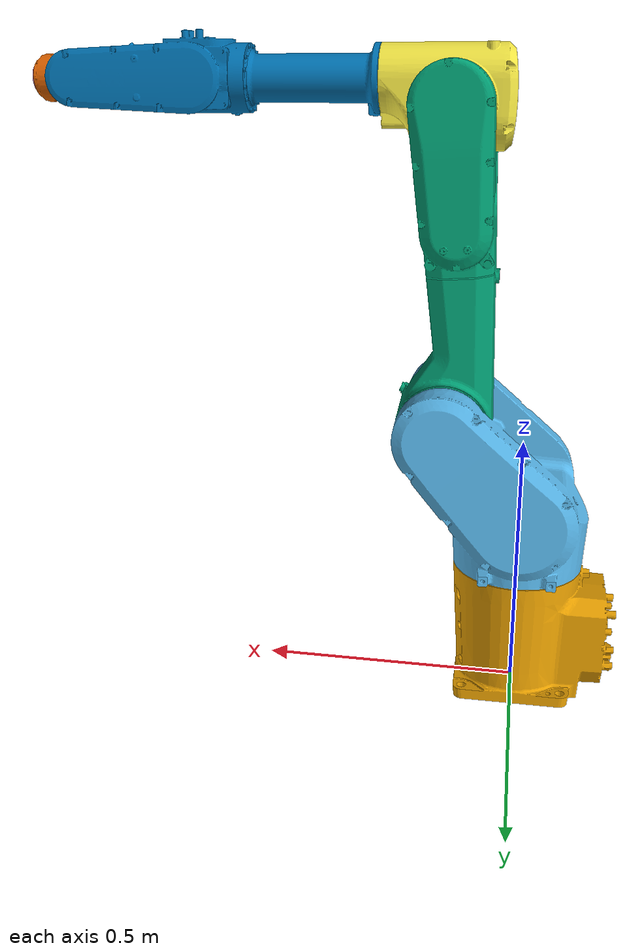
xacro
<?xml version="1.0"?>
<robot xmlns:xacro="http://www.ros.org/wiki/xacro" name="abb_irb1300_7_1400">
    <xacro:arg name="initial_positions_file" default="initial_positions.yaml" />

    <!-- Import abb_irb1300_7_1400 urdf file -->
    <xacro:include filename="$(find abb_irb1300_support)/urdf/irb1300_7_140.xacro" />

    <!-- Import control_xacro -->
    <xacro:include filename="abb_irb1300_7_1400.ros2_control.xacro" />

    <xacro:abb_irb1300_7_1400_ros2_control name="FakeSystem" initial_positions_file="$(arg initial_positions_file)"/>

</robot>

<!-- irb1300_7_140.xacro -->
<robot name="abb_irb1300_7_140" xmlns:xacro="http://ros.org/wiki/xacro">
  <xacro:include filename="$(find abb_irb1300_support)/urdf/irb1300_7_140_macro.xacro"/>
  <xacro:abb_irb1300_7_140 prefix=""/>
</robot>

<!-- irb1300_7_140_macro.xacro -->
<robot xmlns:xacro="http://ros.org/wiki/xacro" name="irb1300_7_140">
<xacro:macro name="abb_irb1300_7_140" params="prefix">
  <xacro:include filename="$(find abb_resources)/urdf/common_materials.xacro"/>
  <!-- link list -->
  <link name="${prefix}base_link">
    <visual>
      <origin xyz="0 0 0" rpy="0 0 0"/>
      <geometry>
        <mesh filename="package://abb_irb1300_support/meshes/irb1300_10_115/visual/base_link.stl"/>
      </geometry>
      <xacro:material_abb_white/>
    </visual>
    <collision>
      <geometry>
        <mesh filename="package://abb_irb1300_support/meshes/irb1300_10_115/collision/base_link.stl"/>
      </geometry>
      <xacro:material_abb_yellow/>
    </collision>
  </link>
  <link name="${prefix}link_1">
    <visual>
      <origin xyz="0 0 0" rpy="0 0 0"/>
      <geometry>
        <mesh filename="package://abb_irb1300_support/meshes/irb1300_10_115/visual/link_1.stl"/>
      </geometry>
      <xacro:material_abb_white/>
    </visual>
    <collision>
      <origin xyz="0 0 0" rpy="0 0 0"/>
      <geometry>
        <mesh filename="package://abb_irb1300_support/meshes/irb1300_10_115/collision/link_1.stl"/>
      </geometry>
      <xacro:material_abb_yellow/>
    </collision>
  </link>
  <link name="${prefix}link_2">
    <visual>
      <origin xyz="0 0 0" rpy="0 0 0"/>
      <geometry>
        <mesh filename="package://abb_irb1300_support/meshes/irb1300_10_115/visual/link_2.stl"/>
      </geometry>
      <xacro:material_abb_white/>
    </visual>
    <collision>
      <origin xyz="0 0 0" rpy="0 0 0"/>
      <geometry>
        <mesh filename="package://abb_irb1300_support/meshes/irb1300_10_115/collision/link_2.stl"/>
      </geometry>
      <xacro:material_abb_yellow/>
    </collision>
  </link>
  <link name="${prefix}link_3">
    <visual>
      <origin xyz="0 0 0" rpy="0 0 0"/>
      <geometry>
        <mesh filename="package://abb_irb1300_support/meshes/irb1300_10_115/visual/link_3.stl"/>
      </geometry>
      <xacro:material_abb_white/>
    </visual>
    <collision>
      <origin xyz="0 0 0" rpy="0 0 0"/>
      <geometry>
        <mesh filename="package://abb_irb1300_support/meshes/irb1300_10_115/collision/link_3.stl"/>
      </geometry>
      <xacro:material_abb_yellow/>
    </collision>
  </link>
  <link name="${prefix}link_4">
    <visual>
      <origin xyz="0 0 0" rpy="0 0 0"/>
      <geometry>
        <mesh filename="package://abb_irb1300_support/meshes/irb1300_xx_140/visual/link_4.stl"/>
      </geometry>
      <xacro:material_abb_white/>
    </visual>
    <collision>
      <origin xyz="0 0 0" rpy="0 0 0"/>
      <geometry>
        <mesh filename="package://abb_irb1300_support/meshes/irb1300_xx_140/collision/link_4.stl"/>
      </geometry>
      <xacro:material_abb_yellow/>
    </collision>
  </link>
  <link name="${prefix}link_5">
    <visual>
      <origin xyz="0 0 0" rpy="0 0 0"/>
      <geometry>
        <mesh filename="package://abb_irb1300_support/meshes/irb1300_10_115/visual/link_5.stl"/>
      </geometry>
      <xacro:material_abb_white/>
    </visual>
    <collision>
      <origin xyz="0 0 0" rpy="0 0 0"/>
      <geometry>
        <mesh filename="package://abb_irb1300_support/meshes/irb1300_10_115/collision/link_5.stl"/>
      </geometry>
      <xacro:material_abb_yellow/>
    </collision>
  </link>
  <link name="${prefix}link_6">
    <visual>
      <origin xyz="0 0 0" rpy="0 0 0"/>
      <geometry>
        <mesh filename="package://abb_irb1300_support/meshes/irb1300_10_115/visual/link_6.stl"/>
      </geometry>
      <xacro:material_abb_white/>
    </visual>
    <collision>
      <origin xyz="0 0 0" rpy="0 0 0"/>
      <geometry>
        <mesh filename="package://abb_irb1300_support/meshes/irb1300_10_115/collision/link_6.stl"/>
      </geometry>
      <xacro:material_abb_yellow/>
    </collision>
  </link>
  <!-- end of link list -->
  <!-- joint list -->
  <joint name="${prefix}joint_1" type="revolute">
    <origin xyz="0 0 0.544" rpy="0 0 0"/>
    <parent link="${prefix}base_link"/>
    <child link="${prefix}link_1"/>
    <axis xyz="0 0 1"/>
    <limit lower="${radians(-180)}" upper="${radians(180)}" effort="0" velocity="${radians(255)}"/>
  </joint>
  <joint name="${prefix}joint_2" type="revolute">
    <origin xyz="0.15 0 0" rpy="0 0 0"/>
    <parent link="${prefix}link_1"/>
    <child link="${prefix}link_2"/>
    <axis xyz="0 1 0"/>
    <limit lower="${radians(-95)}" upper="${radians(155)}" effort="0" velocity="${radians(180)}"/>
  </joint>
  <joint name="${prefix}joint_3" type="revolute">
    <origin xyz="0 0 0.575" rpy="0 0 0"/>
    <parent link="${prefix}link_2"/>
    <child link="${prefix}link_3"/>
    <axis xyz="0 1 0"/>
    <limit lower="${radians(-210)}" upper="${radians(69)}" effort="0" velocity="${radians(247)}"/>
  </joint>
  <joint name="${prefix}joint_4" type="revolute">
    <origin xyz="0.675 0 0.040" rpy="0 0 0"/>
    <parent link="${prefix}link_3"/>
    <child link="${prefix}link_4"/>
    <axis xyz="1 0 0"/>
    <limit lower="${radians(-230)}" upper="${radians(230)}" effort="0" velocity="${radians(500)}"/>
  </joint>
  <joint name="${prefix}joint_5" type="revolute">
    <origin xyz="0.0 0 0" rpy="0 0 0"/>
    <parent link="${prefix}link_4"/>
    <child link="${prefix}link_5"/>
    <axis xyz="0 1 0"/>
    <limit lower="${radians(-130)}" upper="${radians(130)}" effort="0" velocity="${radians(415)}"/>
  </joint>
  <joint name="${prefix}joint_6" type="revolute">
    <origin xyz="0.090 0 0" rpy="0 0 0"/>
    <parent link="${prefix}link_5"/>
    <child link="${prefix}link_6"/>
    <axis xyz="1 0 0"/>
    <limit lower="${radians(-400)}" upper="${radians(400)}" effort="0" velocity="${radians(720)}"/>
  </joint>
  <!-- end of joint list -->

  <!-- ROS-Industrial 'base' frame: base_link to ABB World Coordinates transform -->
  <link name="${prefix}base" />
  <joint name="${prefix}base_link-base" type="fixed">
    <origin xyz="0 0 0" rpy="0 0 0"/>
    <parent link="${prefix}base_link"/>
    <child link="${prefix}base"/>
  </joint>

  <!-- ROS-Industrial 'flange' frame: attachment point for EEF models -->
  <link name="${prefix}flange"/>
  <joint type="fixed" name="${prefix}joint_6-flange">
    <origin xyz="0 0 0" rpy="0 0 0"/>
    <parent link="${prefix}link_6"/>
    <child link="${prefix}flange"/>
  </joint>

  <!-- ROS-Industrial 'tool0' frame: all-zeros tool frame -->
  <link name="${prefix}tool0" />
  <joint name="${prefix}link_6-tool0" type="fixed">
    <origin xyz="0 0 0" rpy="0 ${radians(90)} 0" />
    <parent link="${prefix}flange" />
    <child link="${prefix}tool0" />
  </joint>
  </xacro:macro>
</robot>
